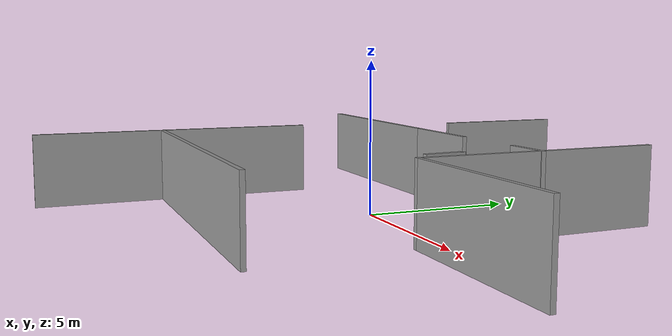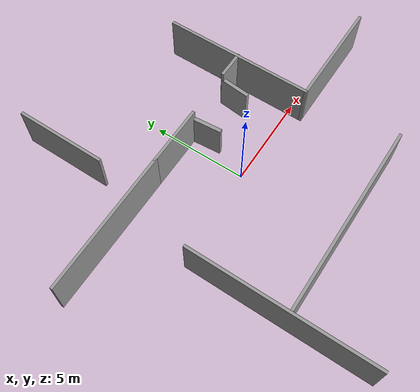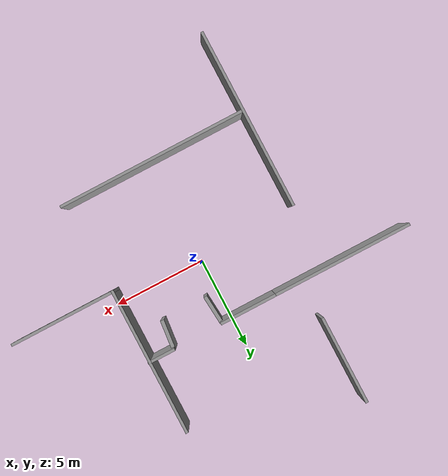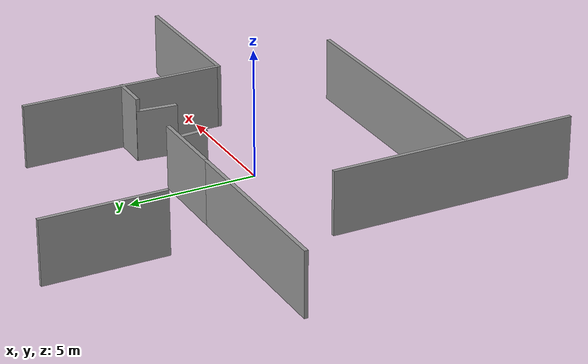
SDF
<?xml version='1.0'?>
<sdf version='1.7'>
  <model name='simple_maze'>
    <pose>0.107151 -0.046684 0 0 -0 0</pose>
    <link name='Door_0'>
      <collision name='Door_0_Collision'>
        <geometry>
          <box>
            <size>1.55342 0.2 2</size>
          </box>
        </geometry>
        <pose>0 0 1 0 -0 0</pose>
      </collision>
      <visual name='Door_0_Visual'>
        <pose>0 0 1 0 -0 0</pose>
        <geometry>
          <box>
            <size>1.55342 0.2 2</size>
          </box>
        </geometry>
        <material>
          <script>
            <uri>file://media/materials/scripts/gazebo.material</uri>
            <name>Gazebo/Grey</name>
          </script>
        </material>
      </visual>
      <pose>0.473717 2.45071 0 0 0 -1.49108</pose>
    </link>
    <link name='Door_1'>
      <collision name='Door_1_Collision'>
        <geometry>
          <box>
            <size>1.60105 0.2 2</size>
          </box>
        </geometry>
        <pose>0 0 1 0 -0 0</pose>
      </collision>
      <visual name='Door_1_Visual'>
        <pose>0 0 1 0 -0 0</pose>
        <geometry>
          <box>
            <size>1.60105 0.2 2</size>
          </box>
        </geometry>
        <material>
          <script>
            <uri>file://media/materials/scripts/gazebo.material</uri>
            <name>Gazebo/Grey</name>
          </script>
        </material>
      </visual>
      <pose>3.08924 2.50944 0 0 -0 1.47122</pose>
    </link>
    <link name='Wall_13'>
      <collision name='Wall_13_Collision'>
        <geometry>
          <box>
            <size>9.75 0.15 2.5</size>
          </box>
        </geometry>
        <pose>0 0 1.25 0 -0 0</pose>
      </collision>
      <visual name='Wall_13_Visual'>
        <pose>0 0 1.25 0 -0 0</pose>
        <geometry>
          <box>
            <size>9.75 0.15 2.5</size>
          </box>
        </geometry>
        <material>
          <script>
            <uri>file://media/materials/scripts/gazebo.material</uri>
            <name>Gazebo/Grey</name>
          </script>
          <ambient>1 1 1 1</ambient>
        </material>
        <meta>
          <layer>0</layer>
        </meta>
      </visual>
      <pose>-5.47247 -5.17467 0 0 -0 -1.5708</pose>
    </link>
    <link name='Wall_15'>
      <collision name='Wall_15_Collision'>
        <geometry>
          <box>
            <size>8 0.15 2.5</size>
          </box>
        </geometry>
        <pose>0 0 1.25 0 -0 0</pose>
      </collision>
      <visual name='Wall_15_Visual'>
        <pose>0 0 1.25 0 -0 0</pose>
        <geometry>
          <box>
            <size>8 0.15 2.5</size>
          </box>
        </geometry>
        <material>
          <script>
            <uri>file://media/materials/scripts/gazebo.material</uri>
            <name>Gazebo/Grey</name>
          </script>
          <ambient>1 1 1 1</ambient>
        </material>
        <meta>
          <layer>0</layer>
        </meta>
      </visual>
      <pose>4.46935 3.21384 0 0 -0 1.5708</pose>
    </link>
    <link name='Wall_17'>
      <collision name='Wall_17_Collision'>
        <geometry>
          <box>
            <size>7.52645 0.15 2.5</size>
          </box>
        </geometry>
        <pose>0 0 1.25 0 -0 0</pose>
      </collision>
      <visual name='Wall_17_Visual'>
        <pose>0 0 1.25 0 -0 0</pose>
        <geometry>
          <box>
            <size>7.52645 0.15 2.5</size>
          </box>
        </geometry>
        <material>
          <script>
            <uri>file://media/materials/scripts/gazebo.material</uri>
            <name>Gazebo/Grey</name>
          </script>
          <ambient>1 1 1 1</ambient>
        </material>
        <meta>
          <layer>0</layer>
        </meta>
      </visual>
      <pose>-6.38113 3.20439 0 0 -0 3.14159</pose>
    </link>
    <link name='Wall_19'>
      <collision name='Wall_19_Collision'>
        <geometry>
          <box>
            <size>5.75 0.15 2.5</size>
          </box>
        </geometry>
        <pose>0 0 1.25 0 -0 0</pose>
      </collision>
      <visual name='Wall_19_Visual'>
        <pose>0 0 1.25 0 -0 0</pose>
        <geometry>
          <box>
            <size>5.75 0.15 2.5</size>
          </box>
        </geometry>
        <material>
          <script>
            <uri>file://media/materials/scripts/gazebo.material</uri>
            <name>Gazebo/Grey</name>
          </script>
          <ambient>1 1 1 1</ambient>
        </material>
        <meta>
          <layer>0</layer>
        </meta>
      </visual>
      <pose>7.26935 -0.711157 0 0 -0 0</pose>
    </link>
    <link name='Wall_22'>
      <collision name='Wall_22_Collision'>
        <geometry>
          <box>
            <size>3.25 0.15 2.5</size>
          </box>
        </geometry>
        <pose>0 0 1.25 0 -0 0</pose>
      </collision>
      <visual name='Wall_22_Visual'>
        <pose>0 0 1.25 0 -0 0</pose>
        <geometry>
          <box>
            <size>3.25 0.15 2.5</size>
          </box>
        </geometry>
        <material>
          <script>
            <uri>file://media/materials/scripts/gazebo.material</uri>
            <name>Gazebo/Grey</name>
          </script>
          <ambient>1 1 1 1</ambient>
        </material>
        <meta>
          <layer>0</layer>
        </meta>
      </visual>
      <pose>-1.15613 3.20439 0 0 -0 3.14159</pose>
    </link>
    <link name='Wall_24'>
      <collision name='Wall_24_Collision'>
        <geometry>
          <box>
            <size>4.75 0.15 2.5</size>
          </box>
        </geometry>
        <pose>0 0 1.25 0 -0 0</pose>
      </collision>
      <visual name='Wall_24_Visual'>
        <pose>0 0 1.25 0 -0 0</pose>
        <geometry>
          <box>
            <size>4.75 0.15 2.5</size>
          </box>
        </geometry>
        <material>
          <script>
            <uri>file://media/materials/scripts/gazebo.material</uri>
            <name>Gazebo/Grey</name>
          </script>
          <ambient>1 1 1 1</ambient>
        </material>
        <meta>
          <layer>0</layer>
        </meta>
      </visual>
      <pose>-4.13219 7.67467 0 0 -0 1.5708</pose>
    </link>
    <link name='Wall_27'>
      <collision name='Wall_27_Collision'>
        <geometry>
          <box>
            <size>1.5 0.15 2.5</size>
          </box>
        </geometry>
        <pose>0 0 1.25 0 -0 0</pose>
      </collision>
      <visual name='Wall_27_Visual'>
        <pose>0 0 1.25 0 -0 0</pose>
        <geometry>
          <box>
            <size>1.5 0.15 2.5</size>
          </box>
        </geometry>
        <material>
          <script>
            <uri>file://media/materials/scripts/gazebo.material</uri>
            <name>Gazebo/Grey</name>
          </script>
          <ambient>1 1 1 1</ambient>
        </material>
        <meta>
          <layer>0</layer>
        </meta>
      </visual>
      <pose>3.81922 3.2479 0 0 -0 3.14159</pose>
    </link>
    <link name='Wall_29'>
      <collision name='Wall_29_Collision'>
        <geometry>
          <box>
            <size>10.25 0.15 2.5</size>
          </box>
        </geometry>
        <pose>0 0 1.25 0 -0 0</pose>
      </collision>
      <visual name='Wall_29_Visual'>
        <pose>0 0 1.25 0 -0 0</pose>
        <geometry>
          <box>
            <size>10.25 0.15 2.5</size>
          </box>
        </geometry>
        <material>
          <script>
            <uri>file://media/materials/scripts/gazebo.material</uri>
            <name>Gazebo/Grey</name>
          </script>
          <ambient>1 1 1 1</ambient>
        </material>
        <meta>
          <layer>0</layer>
        </meta>
      </visual>
      <pose>-0.330734 -5.64892 0 0 -0 3.14159</pose>
    </link>
    <static>1</static>
  </model>
</sdf>
